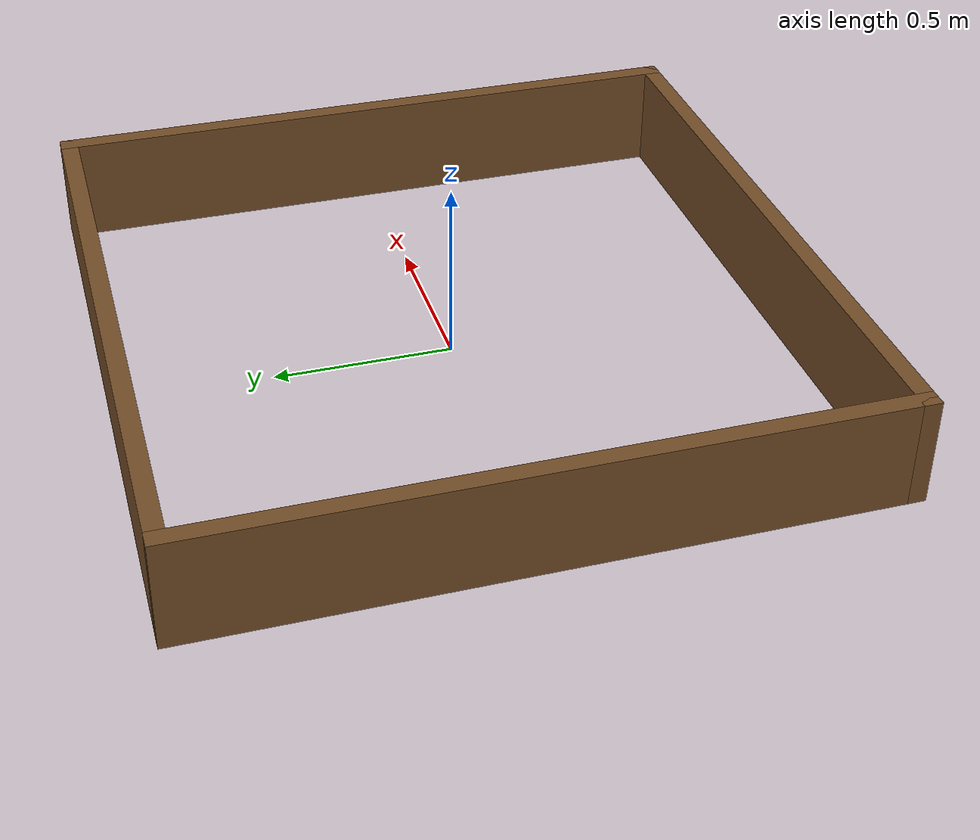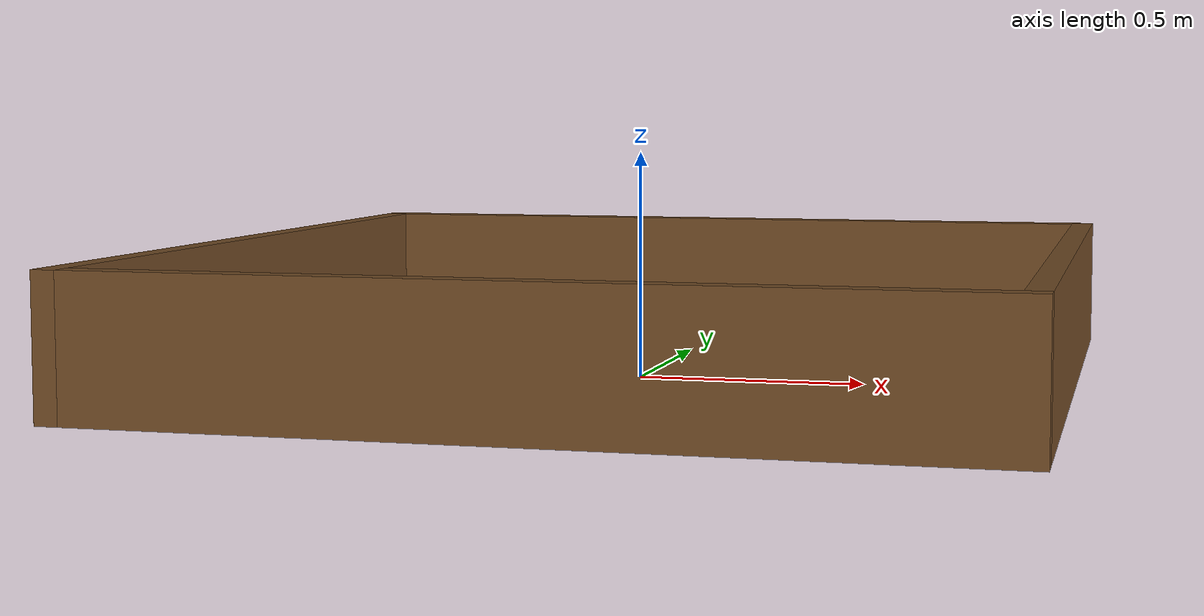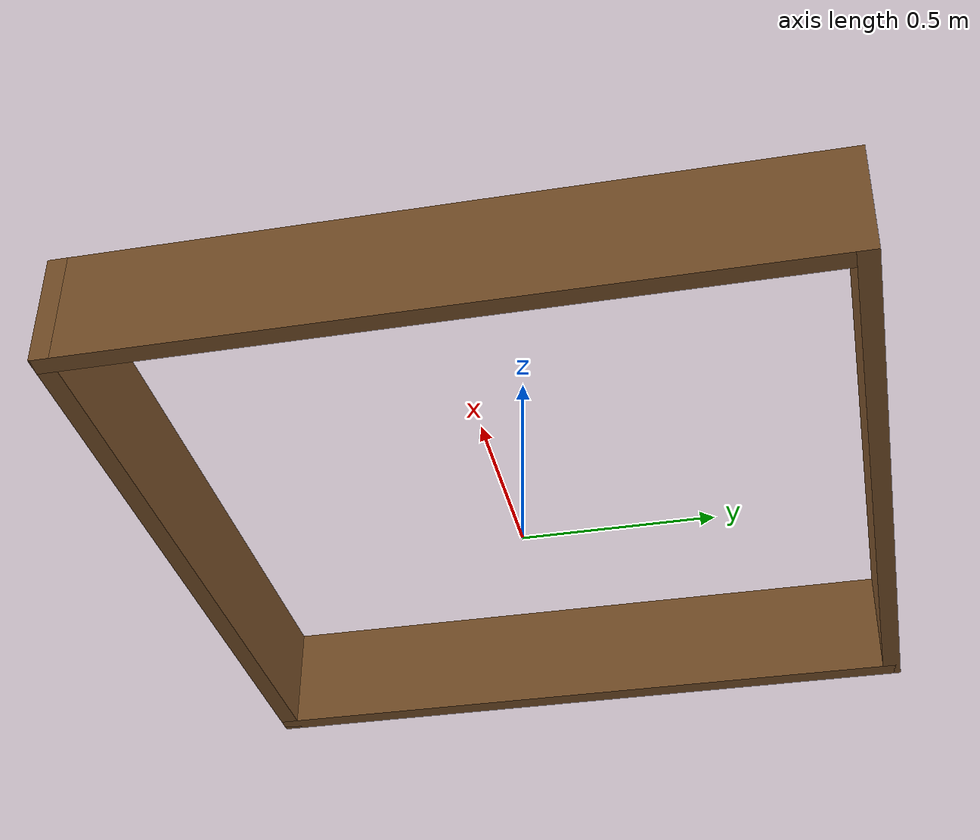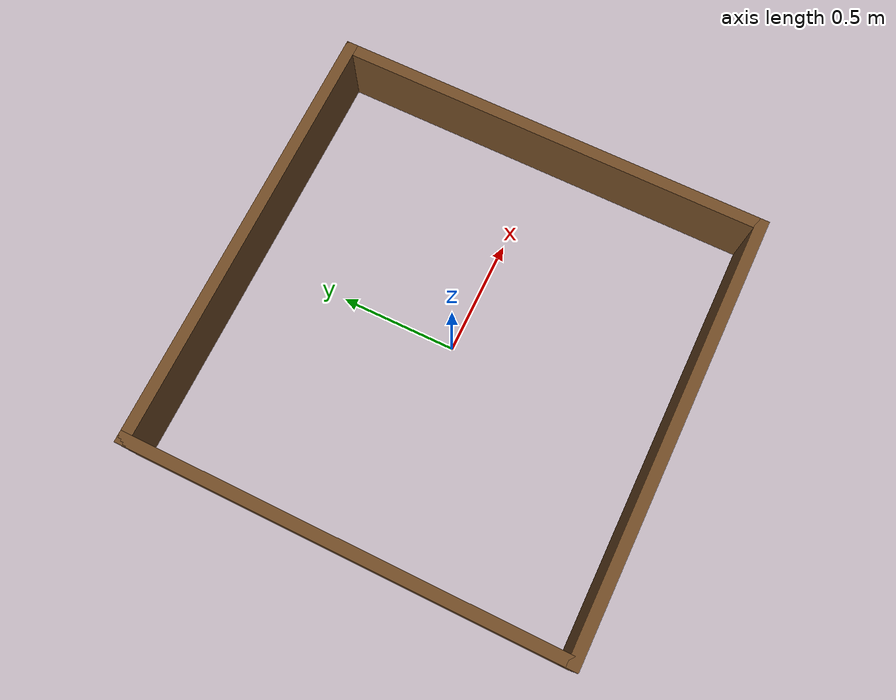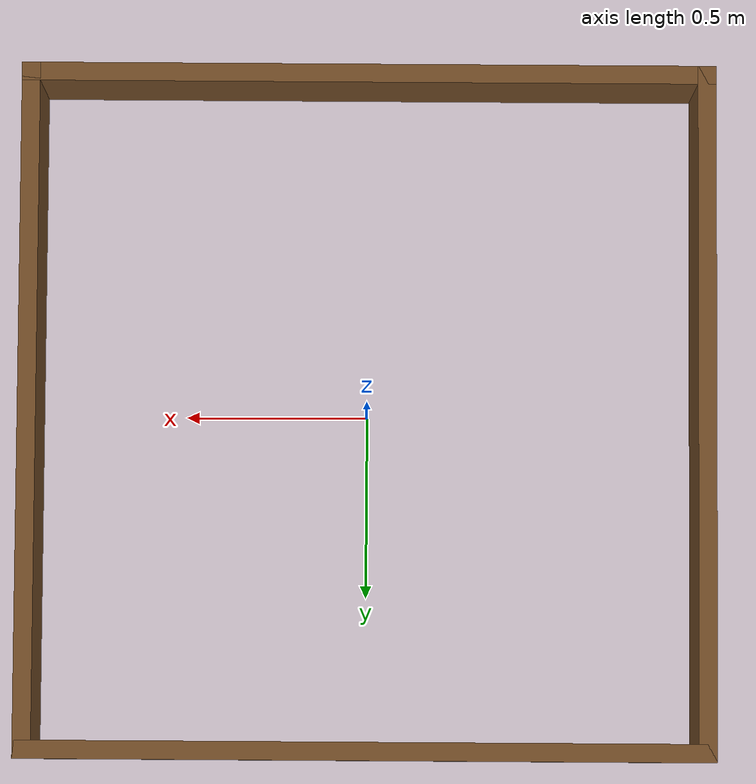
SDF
<?xml version='1.0'?>
<sdf version='1.7'>
  <model name='square2m'>
    <pose>0 0 0 0 0 0</pose>
    <link name='Wall_0'>
      <collision name='Wall_0_Collision'>
        <geometry>
          <box>
            <size>1.9 0.05 0.3</size>
          </box>
        </geometry>
        <pose>0 0 0.15 0 -0 0</pose>
      </collision>
      <visual name='Wall_0_Visual'>
        <pose>0 0 0.15 0 -0 0</pose>
        <geometry>
          <box>
            <size>1.9 0.05 0.3</size>
          </box>
        </geometry>
        <material>
          <ambient>0.45 0.30 0.15 1</ambient>
          <diffuse>0.45 0.30 0.15 1</diffuse>
          <specular>0.05 0.05 0.05 1</specular>
        </material>
        <meta>
          <layer>0</layer>
        </meta>
      </visual>
      <pose>0 0.925 0 0 0 0</pose>
    </link>
    <link name='Wall_1'>
      <collision name='Wall_1_Collision'>
        <geometry>
          <box>
            <size>1.9 0.05 0.3</size>
          </box>
        </geometry>
        <pose>0 0 0.15 0 -0 0</pose>
      </collision>
      <visual name='Wall_1_Visual'>
        <pose>0 0 0.15 0 -0 0</pose>
        <geometry>
          <box>
            <size>1.9 0.05 0.3</size>
          </box>
        </geometry>
        <material>
          <ambient>0.45 0.30 0.15 1</ambient>
          <diffuse>0.45 0.30 0.15 1</diffuse>
          <specular>0.05 0.05 0.05 1</specular>
        </material>
        <meta>
          <layer>0</layer>
        </meta>
      </visual>
      <pose>0.925 0 0 0 0 -1.5708</pose>
    </link>
    <link name='Wall_2'>
      <collision name='Wall_2_Collision'>
        <geometry>
          <box>
            <size>1.9 0.05 0.3</size>
          </box>
        </geometry>
        <pose>0 0 0.15 0 -0 0</pose>
      </collision>
      <visual name='Wall_2_Visual'>
        <pose>0 0 0.15 0 -0 0</pose>
        <geometry>
          <box>
            <size>1.9 0.05 0.3</size>
          </box>
        </geometry>
        <material>
          <ambient>0.45 0.30 0.15 1</ambient>
          <diffuse>0.45 0.30 0.15 1</diffuse>
          <specular>0.05 0.05 0.05 1</specular>
        </material>
        <meta>
          <layer>0</layer>
        </meta>
      </visual>
      <pose>0 -0.925 0 0 0 3.14159</pose>
    </link>
    <link name='Wall_3'>
      <collision name='Wall_3_Collision'>
        <geometry>
          <box>
            <size>1.9 0.05 0.3</size>
          </box>
        </geometry>
        <pose>0 0 0.15 0 -0 0</pose>
      </collision>
      <visual name='Wall_3_Visual'>
        <pose>0 0 0.15 0 -0 0</pose>
        <geometry>
          <box>
            <size>1.9 0.05 0.3</size>
          </box>
        </geometry>
        <material>
          <ambient>0.45 0.30 0.15 1</ambient>
          <diffuse>0.45 0.30 0.15 1</diffuse>
          <specular>0.05 0.05 0.05 1</specular>
        </material>
        <meta>
          <layer>0</layer>
        </meta>
      </visual>
      <pose>-0.925 0 0 0 0 1.5708</pose>
    </link>
    <static>1</static>
  </model>
</sdf>
